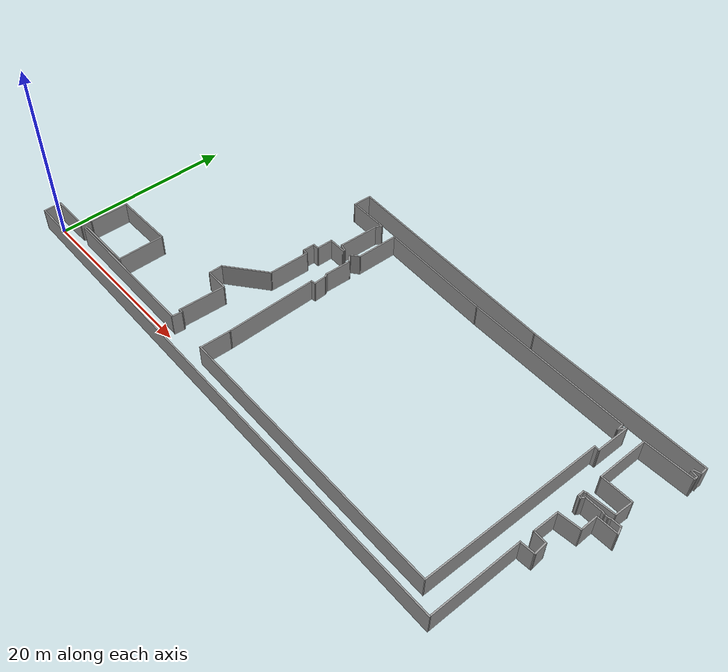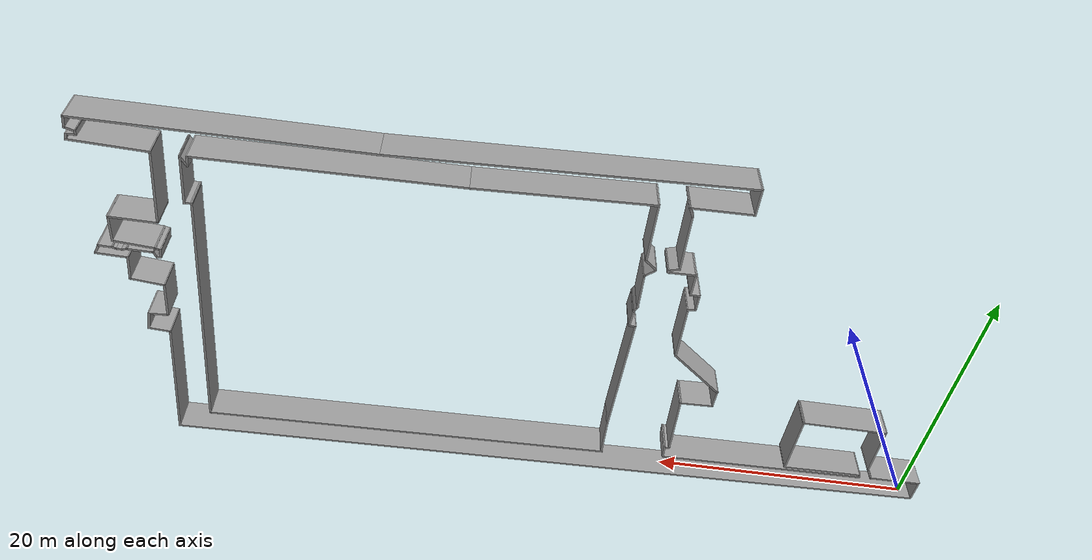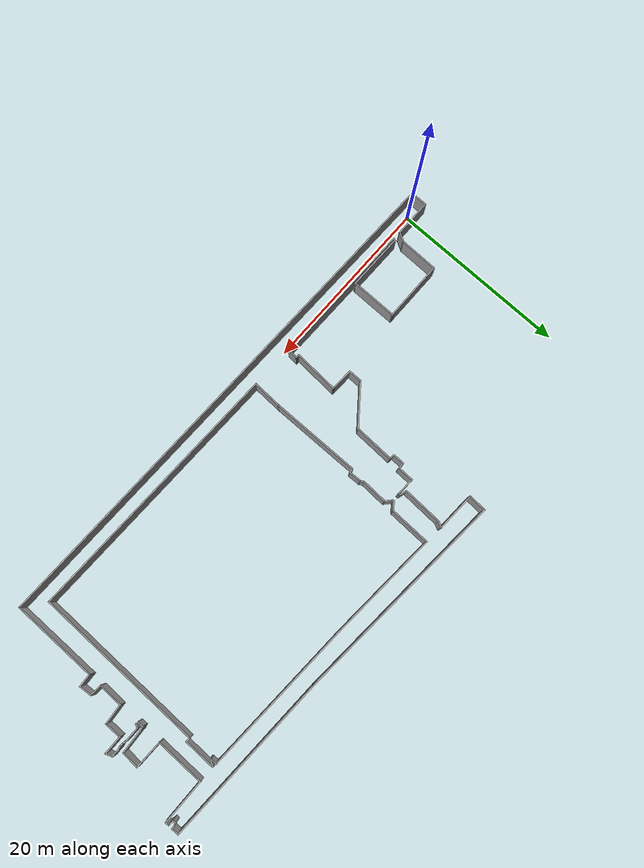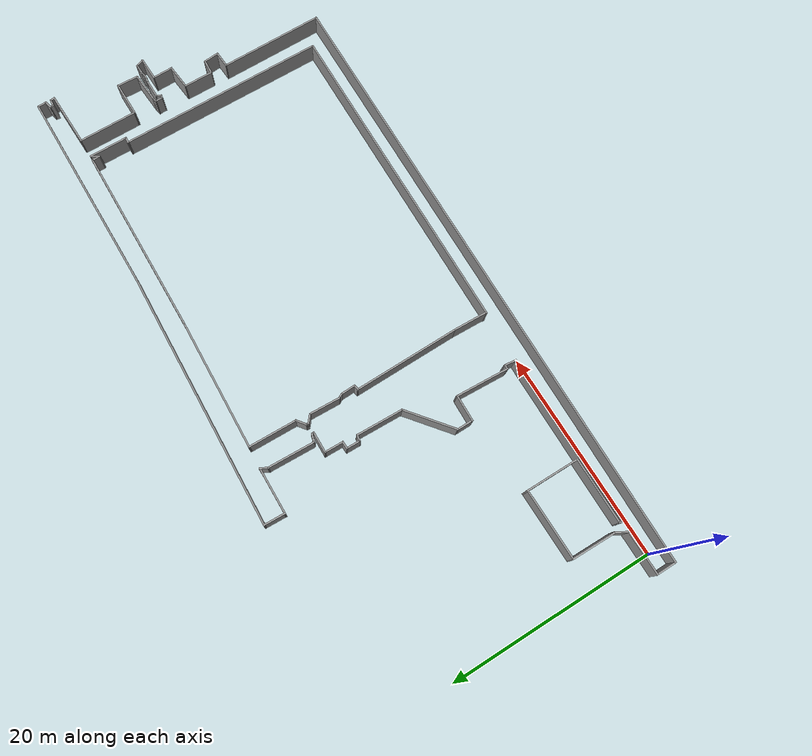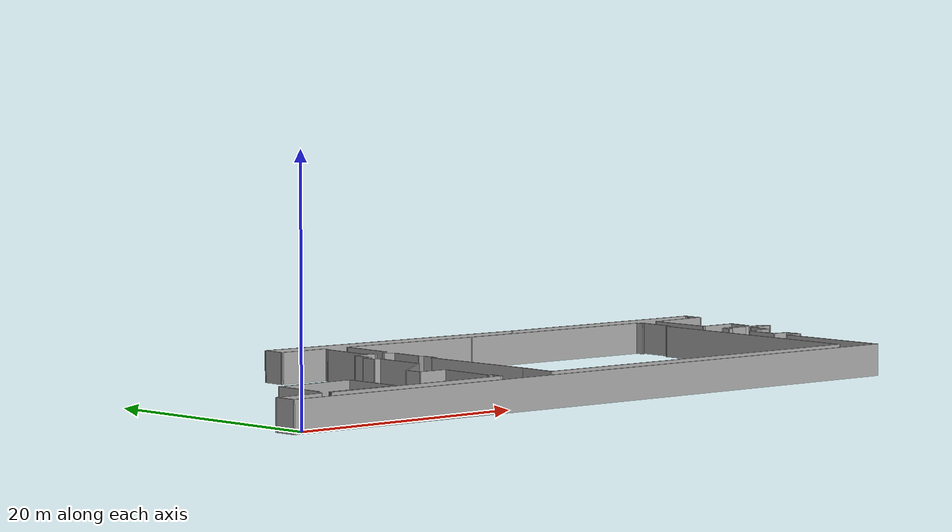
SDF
<?xml version='1.0'?>
<sdf version='1.7'>
  <model name='EnvDC03'>
    <pose>30.9295 12.259 0 0 -0 0</pose>
    <link name='Wall_101'>
      <collision name='Wall_101_Collision'>
        <geometry>
          <box>
            <size>3.03607 0.15 2.5</size>
          </box>
        </geometry>
        <pose>0 0 1.25 0 -0 0</pose>
      </collision>
      <visual name='Wall_101_Visual'>
        <pose>0 0 1.25 0 -0 0</pose>
        <geometry>
          <box>
            <size>3.03607 0.15 2.5</size>
          </box>
        </geometry>
        <material>
          <script>
            <uri>file://media/materials/scripts/gazebo.material</uri>
            <name>Gazebo/Grey</name>
          </script>
          <ambient>1 1 1 1</ambient>
        </material>
        <meta>
          <layer>0</layer>
        </meta>
      </visual>
      <pose>-5.7545 4.67666 0 0 -0 -1.61778</pose>
    </link>
    <link name='Wall_102'>
      <collision name='Wall_102_Collision'>
        <geometry>
          <box>
            <size>0.553985 0.15 2.5</size>
          </box>
        </geometry>
        <pose>0 0 1.25 0 -0 0</pose>
      </collision>
      <visual name='Wall_102_Visual'>
        <pose>0 0 1.25 0 -0 0</pose>
        <geometry>
          <box>
            <size>0.553985 0.15 2.5</size>
          </box>
        </geometry>
        <material>
          <script>
            <uri>file://media/materials/scripts/gazebo.material</uri>
            <name>Gazebo/Grey</name>
          </script>
          <ambient>1 1 1 1</ambient>
        </material>
        <meta>
          <layer>0</layer>
        </meta>
      </visual>
      <pose>-5.72555 3.05789 0 0 -0 -1.07145</pose>
    </link>
    <link name='Wall_103'>
      <collision name='Wall_103_Collision'>
        <geometry>
          <box>
            <size>1.4889 0.15 2.5</size>
          </box>
        </geometry>
        <pose>0 0 1.25 0 -0 0</pose>
      </collision>
      <visual name='Wall_103_Visual'>
        <pose>0 0 1.25 0 -0 0</pose>
        <geometry>
          <box>
            <size>1.4889 0.15 2.5</size>
          </box>
        </geometry>
        <material>
          <script>
            <uri>file://media/materials/scripts/gazebo.material</uri>
            <name>Gazebo/Grey</name>
          </script>
          <ambient>1 1 1 1</ambient>
        </material>
        <meta>
          <layer>0</layer>
        </meta>
      </visual>
      <pose>-5.60464 2.21155 0 0 -0 -1.53467</pose>
    </link>
    <link name='Wall_104'>
      <collision name='Wall_104_Collision'>
        <geometry>
          <box>
            <size>0.608521 0.15 2.5</size>
          </box>
        </geometry>
        <pose>0 0 1.25 0 -0 0</pose>
      </collision>
      <visual name='Wall_104_Visual'>
        <pose>0 0 1.25 0 -0 0</pose>
        <geometry>
          <box>
            <size>0.608521 0.15 2.5</size>
          </box>
        </geometry>
        <material>
          <script>
            <uri>file://media/materials/scripts/gazebo.material</uri>
            <name>Gazebo/Grey</name>
          </script>
          <ambient>1 1 1 1</ambient>
        </material>
        <meta>
          <layer>0</layer>
        </meta>
      </visual>
      <pose>-5.80615 1.50223 0 0 -0 -2.96488</pose>
    </link>
    <link name='Wall_106'>
      <collision name='Wall_106_Collision'>
        <geometry>
          <box>
            <size>10.1892 0.15 2.5</size>
          </box>
        </geometry>
        <pose>0 0 1.25 0 -0 0</pose>
      </collision>
      <visual name='Wall_106_Visual'>
        <pose>0 0 1.25 0 -0 0</pose>
        <geometry>
          <box>
            <size>10.1892 0.15 2.5</size>
          </box>
        </geometry>
        <material>
          <script>
            <uri>file://media/materials/scripts/gazebo.material</uri>
            <name>Gazebo/Grey</name>
          </script>
          <ambient>1 1 1 1</ambient>
        </material>
        <meta>
          <layer>0</layer>
        </meta>
      </visual>
      <pose>-6.00908 -3.5576 0 0 -0 -1.56626</pose>
    </link>
    <link name='Wall_107'>
      <collision name='Wall_107_Collision'>
        <geometry>
          <box>
            <size>3.39689 0.15 2.5</size>
          </box>
        </geometry>
        <pose>0 0 1.25 0 -0 0</pose>
      </collision>
      <visual name='Wall_107_Visual'>
        <pose>0 0 1.25 0 -0 0</pose>
        <geometry>
          <box>
            <size>3.39689 0.15 2.5</size>
          </box>
        </geometry>
        <material>
          <script>
            <uri>file://media/materials/scripts/gazebo.material</uri>
            <name>Gazebo/Grey</name>
          </script>
          <ambient>1 1 1 1</ambient>
        </material>
        <meta>
          <layer>0</layer>
        </meta>
      </visual>
      <pose>-6.0512 -10.1993 0 0 -0 -1.61078</pose>
    </link>
    <link name='Wall_109'>
      <collision name='Wall_109_Collision'>
        <geometry>
          <box>
            <size>6.83694 0.15 2.5</size>
          </box>
        </geometry>
        <pose>0 0 1.25 0 -0 0</pose>
      </collision>
      <visual name='Wall_109_Visual'>
        <pose>0 0 1.25 0 -0 0</pose>
        <geometry>
          <box>
            <size>6.83694 0.15 2.5</size>
          </box>
        </geometry>
        <material>
          <script>
            <uri>file://media/materials/scripts/gazebo.material</uri>
            <name>Gazebo/Grey</name>
          </script>
          <ambient>1 1 1 1</ambient>
        </material>
        <meta>
          <layer>0</layer>
        </meta>
      </visual>
      <pose>-24.3549 -6.10152 0 0 -0 0.003708</pose>
    </link>
    <link name='Wall_110'>
      <collision name='Wall_110_Collision'>
        <geometry>
          <box>
            <size>5.24995 0.15 2.5</size>
          </box>
        </geometry>
        <pose>0 0 1.25 0 -0 0</pose>
      </collision>
      <visual name='Wall_110_Visual'>
        <pose>0 0 1.25 0 -0 0</pose>
        <geometry>
          <box>
            <size>5.24995 0.15 2.5</size>
          </box>
        </geometry>
        <material>
          <script>
            <uri>file://media/materials/scripts/gazebo.material</uri>
            <name>Gazebo/Grey</name>
          </script>
          <ambient>1 1 1 1</ambient>
        </material>
        <meta>
          <layer>0</layer>
        </meta>
      </visual>
      <pose>-21.0239 -8.63907 0 0 -0 -1.57566</pose>
    </link>
    <link name='Wall_111'>
      <collision name='Wall_111_Collision'>
        <geometry>
          <box>
            <size>6.39068 0.15 2.5</size>
          </box>
        </geometry>
        <pose>0 0 1.25 0 -0 0</pose>
      </collision>
      <visual name='Wall_111_Visual'>
        <pose>0 0 1.25 0 -0 0</pose>
        <geometry>
          <box>
            <size>6.39068 0.15 2.5</size>
          </box>
        </geometry>
        <material>
          <script>
            <uri>file://media/materials/scripts/gazebo.material</uri>
            <name>Gazebo/Grey</name>
          </script>
          <ambient>1 1 1 1</ambient>
        </material>
        <meta>
          <layer>0</layer>
        </meta>
      </visual>
      <pose>-24.1566 -11.1683 0 0 -0 3.13497</pose>
    </link>
    <link name='Wall_112'>
      <collision name='Wall_112_Collision'>
        <geometry>
          <box>
            <size>0.348719 0.15 2.5</size>
          </box>
        </geometry>
        <pose>0 0 1.25 0 -0 0</pose>
      </collision>
      <visual name='Wall_112_Visual'>
        <pose>0 0 1.25 0 -0 0</pose>
        <geometry>
          <box>
            <size>0.348719 0.15 2.5</size>
          </box>
        </geometry>
        <material>
          <script>
            <uri>file://media/materials/scripts/gazebo.material</uri>
            <name>Gazebo/Grey</name>
          </script>
          <ambient>1 1 1 1</ambient>
        </material>
        <meta>
          <layer>0</layer>
        </meta>
      </visual>
      <pose>-27.3058 -11.2427 0 0 -0 -1.86624</pose>
    </link>
    <link name='Wall_18'>
      <collision name='Wall_18_Collision'>
        <geometry>
          <box>
            <size>16.3872 0.15 2.5</size>
          </box>
        </geometry>
        <pose>0 0 1.25 0 -0 0</pose>
      </collision>
      <visual name='Wall_18_Visual'>
        <pose>0 0 1.25 0 -0 0</pose>
        <geometry>
          <box>
            <size>16.3872 0.15 2.5</size>
          </box>
        </geometry>
        <material>
          <script>
            <uri>file://media/materials/scripts/gazebo.material</uri>
            <name>Gazebo/Grey</name>
          </script>
          <ambient>1 1 1 1</ambient>
        </material>
        <meta>
          <layer>0</layer>
        </meta>
      </visual>
      <pose>-19.2291 -11.4911 0 0 -0 -0.0127</pose>
    </link>
    <link name='Wall_2'>
      <collision name='Wall_2_Collision'>
        <geometry>
          <box>
            <size>4.25 0.15 2.5</size>
          </box>
        </geometry>
        <pose>0 0 1.25 0 -0 0</pose>
      </collision>
      <visual name='Wall_2_Visual'>
        <pose>0 0 1.25 0 -0 0</pose>
        <geometry>
          <box>
            <size>4.25 0.15 2.5</size>
          </box>
        </geometry>
        <material>
          <script>
            <uri>file://media/materials/scripts/gazebo.material</uri>
            <name>Gazebo/Grey</name>
          </script>
          <ambient>1 1 1 1</ambient>
        </material>
        <meta>
          <layer>0</layer>
        </meta>
      </visual>
      <pose>-30.3631 -11.3322 0 0 -0 3.14159</pose>
    </link>
    <link name='Wall_20'>
      <collision name='Wall_20_Collision'>
        <geometry>
          <box>
            <size>59.2584 0.15 2.5</size>
          </box>
        </geometry>
        <pose>0 0 1.25 0 -0 0</pose>
      </collision>
      <visual name='Wall_20_Visual'>
        <pose>0 0 1.25 0 -0 0</pose>
        <geometry>
          <box>
            <size>59.2584 0.15 2.5</size>
          </box>
        </geometry>
        <material>
          <script>
            <uri>file://media/materials/scripts/gazebo.material</uri>
            <name>Gazebo/Grey</name>
          </script>
          <ambient>1 1 1 1</ambient>
        </material>
        <meta>
          <layer>0</layer>
        </meta>
      </visual>
      <pose>-2.86439 -13.7492 0 0 -0 -0.019188</pose>
    </link>
    <link name='Wall_21'>
      <collision name='Wall_21_Collision'>
        <geometry>
          <box>
            <size>9.95182 0.15 2.5</size>
          </box>
        </geometry>
        <pose>0 0 1.25 0 -0 0</pose>
      </collision>
      <visual name='Wall_21_Visual'>
        <pose>0 0 1.25 0 -0 0</pose>
        <geometry>
          <box>
            <size>9.95182 0.15 2.5</size>
          </box>
        </geometry>
        <material>
          <script>
            <uri>file://media/materials/scripts/gazebo.material</uri>
            <name>Gazebo/Grey</name>
          </script>
          <ambient>1 1 1 1</ambient>
        </material>
        <meta>
          <layer>0</layer>
        </meta>
      </visual>
      <pose>26.7758 -9.41607 0 0 -0 1.55214</pose>
    </link>
    <link name='Wall_22'>
      <collision name='Wall_22_Collision'>
        <geometry>
          <box>
            <size>1.63386 0.15 2.5</size>
          </box>
        </geometry>
        <pose>0 0 1.25 0 -0 0</pose>
      </collision>
      <visual name='Wall_22_Visual'>
        <pose>0 0 1.25 0 -0 0</pose>
        <geometry>
          <box>
            <size>1.63386 0.15 2.5</size>
          </box>
        </geometry>
        <material>
          <script>
            <uri>file://media/materials/scripts/gazebo.material</uri>
            <name>Gazebo/Grey</name>
          </script>
          <ambient>1 1 1 1</ambient>
        </material>
        <meta>
          <layer>0</layer>
        </meta>
      </visual>
      <pose>27.6077 -4.47014 0 0 -0 0.06165</pose>
    </link>
    <link name='Wall_23'>
      <collision name='Wall_23_Collision'>
        <geometry>
          <box>
            <size>1.54262 0.15 2.5</size>
          </box>
        </geometry>
        <pose>0 0 1.25 0 -0 0</pose>
      </collision>
      <visual name='Wall_23_Visual'>
        <pose>0 0 1.25 0 -0 0</pose>
        <geometry>
          <box>
            <size>1.54262 0.15 2.5</size>
          </box>
        </geometry>
        <material>
          <script>
            <uri>file://media/materials/scripts/gazebo.material</uri>
            <name>Gazebo/Grey</name>
          </script>
          <ambient>1 1 1 1</ambient>
        </material>
        <meta>
          <layer>0</layer>
        </meta>
      </visual>
      <pose>28.3025 -3.72963 0 0 -0 1.63649</pose>
    </link>
    <link name='Wall_24'>
      <collision name='Wall_24_Collision'>
        <geometry>
          <box>
            <size>1.46965 0.15 2.5</size>
          </box>
        </geometry>
        <pose>0 0 1.25 0 -0 0</pose>
      </collision>
      <visual name='Wall_24_Visual'>
        <pose>0 0 1.25 0 -0 0</pose>
        <geometry>
          <box>
            <size>1.46965 0.15 2.5</size>
          </box>
        </geometry>
        <material>
          <script>
            <uri>file://media/materials/scripts/gazebo.material</uri>
            <name>Gazebo/Grey</name>
          </script>
          <ambient>1 1 1 1</ambient>
        </material>
        <meta>
          <layer>0</layer>
        </meta>
      </visual>
      <pose>27.5986 -2.98911 0 0 -0 3.07226</pose>
    </link>
    <link name='Wall_25'>
      <collision name='Wall_25_Collision'>
        <geometry>
          <box>
            <size>2.87591 0.15 2.5</size>
          </box>
        </geometry>
        <pose>0 0 1.25 0 -0 0</pose>
      </collision>
      <visual name='Wall_25_Visual'>
        <pose>0 0 1.25 0 -0 0</pose>
        <geometry>
          <box>
            <size>2.87591 0.15 2.5</size>
          </box>
        </geometry>
        <material>
          <script>
            <uri>file://media/materials/scripts/gazebo.material</uri>
            <name>Gazebo/Grey</name>
          </script>
          <ambient>1 1 1 1</ambient>
        </material>
        <meta>
          <layer>0</layer>
        </meta>
      </visual>
      <pose>26.9861 -1.58121 0 0 -0 1.53725</pose>
    </link>
    <link name='Wall_26'>
      <collision name='Wall_26_Collision'>
        <geometry>
          <box>
            <size>2.44606 0.15 2.5</size>
          </box>
        </geometry>
        <pose>0 0 1.25 0 -0 0</pose>
      </collision>
      <visual name='Wall_26_Visual'>
        <pose>0 0 1.25 0 -0 0</pose>
        <geometry>
          <box>
            <size>2.44606 0.15 2.5</size>
          </box>
        </geometry>
        <material>
          <script>
            <uri>file://media/materials/scripts/gazebo.material</uri>
            <name>Gazebo/Grey</name>
          </script>
          <ambient>1 1 1 1</ambient>
        </material>
        <meta>
          <layer>0</layer>
        </meta>
      </visual>
      <pose>28.1746 -0.109317 0 0 -0 0.095707</pose>
    </link>
    <link name='Wall_28'>
      <collision name='Wall_28_Collision'>
        <geometry>
          <box>
            <size>2.0151 0.15 2.5</size>
          </box>
        </geometry>
        <pose>0 0 1.25 0 -0 0</pose>
      </collision>
      <visual name='Wall_28_Visual'>
        <pose>0 0 1.25 0 -0 0</pose>
        <geometry>
          <box>
            <size>2.0151 0.15 2.5</size>
          </box>
        </geometry>
        <material>
          <script>
            <uri>file://media/materials/scripts/gazebo.material</uri>
            <name>Gazebo/Grey</name>
          </script>
          <ambient>1 1 1 1</ambient>
        </material>
        <meta>
          <layer>0</layer>
        </meta>
      </visual>
      <pose>29.3265 0.932894 0 0 -0 1.56099</pose>
    </link>
    <link name='Wall_29'>
      <collision name='Wall_29_Collision'>
        <geometry>
          <box>
            <size>2.2713 0.15 2.5</size>
          </box>
        </geometry>
        <pose>0 0 1.25 0 -0 0</pose>
      </collision>
      <visual name='Wall_29_Visual'>
        <pose>0 0 1.25 0 -0 0</pose>
        <geometry>
          <box>
            <size>2.2713 0.15 2.5</size>
          </box>
        </geometry>
        <material>
          <script>
            <uri>file://media/materials/scripts/gazebo.material</uri>
            <name>Gazebo/Grey</name>
          </script>
          <ambient>1 1 1 1</ambient>
        </material>
        <meta>
          <layer>0</layer>
        </meta>
      </visual>
      <pose>30.3961 1.88368 0 0 -0 0.01724</pose>
    </link>
    <link name='Wall_3'>
      <collision name='Wall_3_Collision'>
        <geometry>
          <box>
            <size>2 0.15 2.5</size>
          </box>
        </geometry>
        <pose>0 0 1.25 0 -0 0</pose>
      </collision>
      <visual name='Wall_3_Visual'>
        <pose>0 0 1.25 0 -0 0</pose>
        <geometry>
          <box>
            <size>2 0.15 2.5</size>
          </box>
        </geometry>
        <material>
          <script>
            <uri>file://media/materials/scripts/gazebo.material</uri>
            <name>Gazebo/Grey</name>
          </script>
          <ambient>1 1 1 1</ambient>
        </material>
        <meta>
          <layer>0</layer>
        </meta>
      </visual>
      <pose>-32.4131 -12.2572 0 0 -0 -1.5708</pose>
    </link>
    <link name='Wall_30'>
      <collision name='Wall_30_Collision'>
        <geometry>
          <box>
            <size>0.890462 0.15 2.5</size>
          </box>
        </geometry>
        <pose>0 0 1.25 0 -0 0</pose>
      </collision>
      <visual name='Wall_30_Visual'>
        <pose>0 0 1.25 0 -0 0</pose>
        <geometry>
          <box>
            <size>0.890462 0.15 2.5</size>
          </box>
        </geometry>
        <material>
          <script>
            <uri>file://media/materials/scripts/gazebo.material</uri>
            <name>Gazebo/Grey</name>
          </script>
          <ambient>1 1 1 1</ambient>
        </material>
        <meta>
          <layer>0</layer>
        </meta>
      </visual>
      <pose>31.3286 2.24937 0 0 -0 1.92379</pose>
    </link>
    <link name='Wall_32'>
      <collision name='Wall_32_Collision'>
        <geometry>
          <box>
            <size>1.0622 0.15 2.5</size>
          </box>
        </geometry>
        <pose>0 0 1.25 0 -0 0</pose>
      </collision>
      <visual name='Wall_32_Visual'>
        <pose>0 0 1.25 0 -0 0</pose>
        <geometry>
          <box>
            <size>1.0622 0.15 2.5</size>
          </box>
        </geometry>
        <material>
          <script>
            <uri>file://media/materials/scripts/gazebo.material</uri>
            <name>Gazebo/Grey</name>
          </script>
          <ambient>1 1 1 1</ambient>
        </material>
        <meta>
          <layer>0</layer>
        </meta>
      </visual>
      <pose>30.7445 2.59295 0 0 -0 -3.13321</pose>
    </link>
    <link name='Wall_33'>
      <collision name='Wall_33_Collision'>
        <geometry>
          <box>
            <size>0.434047 0.15 2.5</size>
          </box>
        </geometry>
        <pose>0 0 1.25 0 -0 0</pose>
      </collision>
      <visual name='Wall_33_Visual'>
        <pose>0 0 1.25 0 -0 0</pose>
        <geometry>
          <box>
            <size>0.434047 0.15 2.5</size>
          </box>
        </geometry>
        <material>
          <script>
            <uri>file://media/materials/scripts/gazebo.material</uri>
            <name>Gazebo/Grey</name>
          </script>
          <ambient>1 1 1 1</ambient>
        </material>
        <meta>
          <layer>0</layer>
        </meta>
      </visual>
      <pose>30.1522 2.54906 0 0 -0 -2.85554</pose>
    </link>
    <link name='Wall_34'>
      <collision name='Wall_34_Collision'>
        <geometry>
          <box>
            <size>0.498738 0.15 2.5</size>
          </box>
        </geometry>
        <pose>0 0 1.25 0 -0 0</pose>
      </collision>
      <visual name='Wall_34_Visual'>
        <pose>0 0 1.25 0 -0 0</pose>
        <geometry>
          <box>
            <size>0.498738 0.15 2.5</size>
          </box>
        </geometry>
        <material>
          <script>
            <uri>file://media/materials/scripts/gazebo.material</uri>
            <name>Gazebo/Grey</name>
          </script>
          <ambient>1 1 1 1</ambient>
        </material>
        <meta>
          <layer>0</layer>
        </meta>
      </visual>
      <pose>29.8416 2.50497 0 0 -0 -3.11861</pose>
    </link>
    <link name='Wall_35'>
      <collision name='Wall_35_Collision'>
        <geometry>
          <box>
            <size>0.508659 0.15 2.5</size>
          </box>
        </geometry>
        <pose>0 0 1.25 0 -0 0</pose>
      </collision>
      <visual name='Wall_35_Visual'>
        <pose>0 0 1.25 0 -0 0</pose>
        <geometry>
          <box>
            <size>0.508659 0.15 2.5</size>
          </box>
        </geometry>
        <material>
          <script>
            <uri>file://media/materials/scripts/gazebo.material</uri>
            <name>Gazebo/Grey</name>
          </script>
          <ambient>1 1 1 1</ambient>
        </material>
        <meta>
          <layer>0</layer>
        </meta>
      </visual>
      <pose>29.493 2.54505 0 0 -0 2.89391</pose>
    </link>
    <link name='Wall_36'>
      <collision name='Wall_36_Collision'>
        <geometry>
          <box>
            <size>1.88526 0.15 2.5</size>
          </box>
        </geometry>
        <pose>0 0 1.25 0 -0 0</pose>
      </collision>
      <visual name='Wall_36_Visual'>
        <pose>0 0 1.25 0 -0 0</pose>
        <geometry>
          <box>
            <size>1.88526 0.15 2.5</size>
          </box>
        </geometry>
        <material>
          <script>
            <uri>file://media/materials/scripts/gazebo.material</uri>
            <name>Gazebo/Grey</name>
          </script>
          <ambient>1 1 1 1</ambient>
        </material>
        <meta>
          <layer>0</layer>
        </meta>
      </visual>
      <pose>28.451 2.59314 0 0 -0 3.13697</pose>
    </link>
    <link name='Wall_37'>
      <collision name='Wall_37_Collision'>
        <geometry>
          <box>
            <size>0.586442 0.15 2.5</size>
          </box>
        </geometry>
        <pose>0 0 1.25 0 -0 0</pose>
      </collision>
      <visual name='Wall_37_Visual'>
        <pose>0 0 1.25 0 -0 0</pose>
        <geometry>
          <box>
            <size>0.586442 0.15 2.5</size>
          </box>
        </geometry>
        <material>
          <script>
            <uri>file://media/materials/scripts/gazebo.material</uri>
            <name>Gazebo/Grey</name>
          </script>
          <ambient>1 1 1 1</ambient>
        </material>
        <meta>
          <layer>0</layer>
        </meta>
      </visual>
      <pose>27.4732 2.4088 0 0 -0 -2.10019</pose>
    </link>
    <link name='Wall_38'>
      <collision name='Wall_38_Collision'>
        <geometry>
          <box>
            <size>0.401672 0.15 2.5</size>
          </box>
        </geometry>
        <pose>0 0 1.25 0 -0 0</pose>
      </collision>
      <visual name='Wall_38_Visual'>
        <pose>0 0 1.25 0 -0 0</pose>
        <geometry>
          <box>
            <size>0.401672 0.15 2.5</size>
          </box>
        </geometry>
        <material>
          <script>
            <uri>file://media/materials/scripts/gazebo.material</uri>
            <name>Gazebo/Grey</name>
          </script>
          <ambient>1 1 1 1</ambient>
        </material>
        <meta>
          <layer>0</layer>
        </meta>
      </visual>
      <pose>27.2388 2.24048 0 0 -0 2.98168</pose>
    </link>
    <link name='Wall_39'>
      <collision name='Wall_39_Collision'>
        <geometry>
          <box>
            <size>0.77521 0.15 2.5</size>
          </box>
        </geometry>
        <pose>0 0 1.25 0 -0 0</pose>
      </collision>
      <visual name='Wall_39_Visual'>
        <pose>0 0 1.25 0 -0 0</pose>
        <geometry>
          <box>
            <size>0.77521 0.15 2.5</size>
          </box>
        </geometry>
        <material>
          <script>
            <uri>file://media/materials/scripts/gazebo.material</uri>
            <name>Gazebo/Grey</name>
          </script>
          <ambient>1 1 1 1</ambient>
        </material>
        <meta>
          <layer>0</layer>
        </meta>
      </visual>
      <pose>27.1106 2.5731 0 0 -0 1.58362</pose>
    </link>
    <link name='Wall_40'>
      <collision name='Wall_40_Collision'>
        <geometry>
          <box>
            <size>0.482496 0.15 2.5</size>
          </box>
        </geometry>
        <pose>0 0 1.25 0 -0 0</pose>
      </collision>
      <visual name='Wall_40_Visual'>
        <pose>0 0 1.25 0 -0 0</pose>
        <geometry>
          <box>
            <size>0.482496 0.15 2.5</size>
          </box>
        </geometry>
        <material>
          <script>
            <uri>file://media/materials/scripts/gazebo.material</uri>
            <name>Gazebo/Grey</name>
          </script>
          <ambient>1 1 1 1</ambient>
        </material>
        <meta>
          <layer>0</layer>
        </meta>
      </visual>
      <pose>27.2668 2.92976 0 0 -0 0.268366</pose>
    </link>
    <link name='Wall_41'>
      <collision name='Wall_41_Collision'>
        <geometry>
          <box>
            <size>2.96099 0.15 2.5</size>
          </box>
        </geometry>
        <pose>0 0 1.25 0 -0 0</pose>
      </collision>
      <visual name='Wall_41_Visual'>
        <pose>0 0 1.25 0 -0 0</pose>
        <geometry>
          <box>
            <size>2.96099 0.15 2.5</size>
          </box>
        </geometry>
        <material>
          <script>
            <uri>file://media/materials/scripts/gazebo.material</uri>
            <name>Gazebo/Grey</name>
          </script>
          <ambient>1 1 1 1</ambient>
        </material>
        <meta>
          <layer>0</layer>
        </meta>
      </visual>
      <pose>28.8297 3.06401 0 0 -0 0.064197</pose>
    </link>
    <link name='Wall_43'>
      <collision name='Wall_43_Collision'>
        <geometry>
          <box>
            <size>2.12927 0.15 2.5</size>
          </box>
        </geometry>
        <pose>0 0 1.25 0 -0 0</pose>
      </collision>
      <visual name='Wall_43_Visual'>
        <pose>0 0 1.25 0 -0 0</pose>
        <geometry>
          <box>
            <size>2.12927 0.15 2.5</size>
          </box>
        </geometry>
        <material>
          <script>
            <uri>file://media/materials/scripts/gazebo.material</uri>
            <name>Gazebo/Grey</name>
          </script>
          <ambient>1 1 1 1</ambient>
        </material>
        <meta>
          <layer>0</layer>
        </meta>
      </visual>
      <pose>30.2975 4.14166 0 0 -0 1.50488</pose>
    </link>
    <link name='Wall_44'>
      <collision name='Wall_44_Collision'>
        <geometry>
          <box>
            <size>3.36815 0.15 2.5</size>
          </box>
        </geometry>
        <pose>0 0 1.25 0 -0 0</pose>
      </collision>
      <visual name='Wall_44_Visual'>
        <pose>0 0 1.25 0 -0 0</pose>
        <geometry>
          <box>
            <size>3.36815 0.15 2.5</size>
          </box>
        </geometry>
        <material>
          <script>
            <uri>file://media/materials/scripts/gazebo.material</uri>
            <name>Gazebo/Grey</name>
          </script>
          <ambient>1 1 1 1</ambient>
        </material>
        <meta>
          <layer>0</layer>
        </meta>
      </visual>
      <pose>28.7537 5.14133 0 0 -0 3.13402</pose>
    </link>
    <link name='Wall_45'>
      <collision name='Wall_45_Collision'>
        <geometry>
          <box>
            <size>5.70979 0.15 2.5</size>
          </box>
        </geometry>
        <pose>0 0 1.25 0 -0 0</pose>
      </collision>
      <visual name='Wall_45_Visual'>
        <pose>0 0 1.25 0 -0 0</pose>
        <geometry>
          <box>
            <size>5.70979 0.15 2.5</size>
          </box>
        </geometry>
        <material>
          <script>
            <uri>file://media/materials/scripts/gazebo.material</uri>
            <name>Gazebo/Grey</name>
          </script>
          <ambient>1 1 1 1</ambient>
        </material>
        <meta>
          <layer>0</layer>
        </meta>
      </visual>
      <pose>27.2056 7.93275 0 0 -0 1.54887</pose>
    </link>
    <link name='Wall_46'>
      <collision name='Wall_46_Collision'>
        <geometry>
          <box>
            <size>5.27034 0.15 2.5</size>
          </box>
        </geometry>
        <pose>0 0 1.25 0 -0 0</pose>
      </collision>
      <visual name='Wall_46_Visual'>
        <pose>0 0 1.25 0 -0 0</pose>
        <geometry>
          <box>
            <size>5.27034 0.15 2.5</size>
          </box>
        </geometry>
        <material>
          <script>
            <uri>file://media/materials/scripts/gazebo.material</uri>
            <name>Gazebo/Grey</name>
          </script>
          <ambient>1 1 1 1</ambient>
        </material>
        <meta>
          <layer>0</layer>
        </meta>
      </visual>
      <pose>29.8264 10.7546 0 0 -0 0.016665</pose>
    </link>
    <link name='Wall_47'>
      <collision name='Wall_47_Collision'>
        <geometry>
          <box>
            <size>0.53101 0.15 2.5</size>
          </box>
        </geometry>
        <pose>0 0 1.25 0 -0 0</pose>
      </collision>
      <visual name='Wall_47_Visual'>
        <pose>0 0 1.25 0 -0 0</pose>
        <geometry>
          <box>
            <size>0.53101 0.15 2.5</size>
          </box>
        </geometry>
        <material>
          <script>
            <uri>file://media/materials/scripts/gazebo.material</uri>
            <name>Gazebo/Grey</name>
          </script>
          <ambient>1 1 1 1</ambient>
        </material>
        <meta>
          <layer>0</layer>
        </meta>
      </visual>
      <pose>32.3618 10.9862 0 0 -0 1.69912</pose>
    </link>
    <link name='Wall_48'>
      <collision name='Wall_48_Collision'>
        <geometry>
          <box>
            <size>0.753354 0.15 2.5</size>
          </box>
        </geometry>
        <pose>0 0 1.25 0 -0 0</pose>
      </collision>
      <visual name='Wall_48_Visual'>
        <pose>0 0 1.25 0 -0 0</pose>
        <geometry>
          <box>
            <size>0.753354 0.15 2.5</size>
          </box>
        </geometry>
        <material>
          <script>
            <uri>file://media/materials/scripts/gazebo.material</uri>
            <name>Gazebo/Grey</name>
          </script>
          <ambient>1 1 1 1</ambient>
        </material>
        <meta>
          <layer>0</layer>
        </meta>
      </visual>
      <pose>32.0388 11.2178 0 0 -0 2.9997</pose>
    </link>
    <link name='Wall_49'>
      <collision name='Wall_49_Collision'>
        <geometry>
          <box>
            <size>0.40858 0.15 2.5</size>
          </box>
        </geometry>
        <pose>0 0 1.25 0 -0 0</pose>
      </collision>
      <visual name='Wall_49_Visual'>
        <pose>0 0 1.25 0 -0 0</pose>
        <geometry>
          <box>
            <size>0.40858 0.15 2.5</size>
          </box>
        </geometry>
        <material>
          <script>
            <uri>file://media/materials/scripts/gazebo.material</uri>
            <name>Gazebo/Grey</name>
          </script>
          <ambient>1 1 1 1</ambient>
        </material>
        <meta>
          <layer>0</layer>
        </meta>
      </visual>
      <pose>31.7584 11.3885 0 0 -0 1.4289</pose>
    </link>
    <link name='Wall_5'>
      <collision name='Wall_5_Collision'>
        <geometry>
          <box>
            <size>1.25 0.15 2.5</size>
          </box>
        </geometry>
        <pose>0 0 1.25 0 -0 0</pose>
      </collision>
      <visual name='Wall_5_Visual'>
        <pose>0 0 1.25 0 -0 0</pose>
        <geometry>
          <box>
            <size>1.25 0.15 2.5</size>
          </box>
        </geometry>
        <material>
          <script>
            <uri>file://media/materials/scripts/gazebo.material</uri>
            <name>Gazebo/Grey</name>
          </script>
          <ambient>1 1 1 1</ambient>
        </material>
        <meta>
          <layer>0</layer>
        </meta>
      </visual>
      <pose>-28.0381 -10.8559 0 0 -0 1.0472</pose>
    </link>
    <link name='Wall_50'>
      <collision name='Wall_50_Collision'>
        <geometry>
          <box>
            <size>0.791548 0.15 2.5</size>
          </box>
        </geometry>
        <pose>0 0 1.25 0 -0 0</pose>
      </collision>
      <visual name='Wall_50_Visual'>
        <pose>0 0 1.25 0 -0 0</pose>
        <geometry>
          <box>
            <size>0.791548 0.15 2.5</size>
          </box>
        </geometry>
        <material>
          <script>
            <uri>file://media/materials/scripts/gazebo.material</uri>
            <name>Gazebo/Grey</name>
          </script>
          <ambient>1 1 1 1</ambient>
        </material>
        <meta>
          <layer>0</layer>
        </meta>
      </visual>
      <pose>32.0875 11.5957 0 0 -0 0.249587</pose>
    </link>
    <link name='Wall_51'>
      <collision name='Wall_51_Collision'>
        <geometry>
          <box>
            <size>0.942418 0.15 2.5</size>
          </box>
        </geometry>
        <pose>0 0 1.25 0 -0 0</pose>
      </collision>
      <visual name='Wall_51_Visual'>
        <pose>0 0 1.25 0 -0 0</pose>
        <geometry>
          <box>
            <size>0.942418 0.15 2.5</size>
          </box>
        </geometry>
        <material>
          <script>
            <uri>file://media/materials/scripts/gazebo.material</uri>
            <name>Gazebo/Grey</name>
          </script>
          <ambient>1 1 1 1</ambient>
        </material>
        <meta>
          <layer>0</layer>
        </meta>
      </visual>
      <pose>32.3923 12.0711 0 0 -0 1.58618</pose>
    </link>
    <link name='Wall_53'>
      <collision name='Wall_53_Collision'>
        <geometry>
          <box>
            <size>19.605 0.15 2.5</size>
          </box>
        </geometry>
        <pose>0 0 1.25 0 -0 0</pose>
      </collision>
      <visual name='Wall_53_Visual'>
        <pose>0 0 1.25 0 -0 0</pose>
        <geometry>
          <box>
            <size>19.605 0.15 2.5</size>
          </box>
        </geometry>
        <material>
          <script>
            <uri>file://media/materials/scripts/gazebo.material</uri>
            <name>Gazebo/Grey</name>
          </script>
          <ambient>1 1 1 1</ambient>
        </material>
        <meta>
          <layer>0</layer>
        </meta>
      </visual>
      <pose>22.6612 12.6869 0 0 -0 3.11902</pose>
    </link>
    <link name='Wall_54'>
      <collision name='Wall_54_Collision'>
        <geometry>
          <box>
            <size>24.857 0.15 2.5</size>
          </box>
        </geometry>
        <pose>0 0 1.25 0 -0 0</pose>
      </collision>
      <visual name='Wall_54_Visual'>
        <pose>0 0 1.25 0 -0 0</pose>
        <geometry>
          <box>
            <size>24.857 0.15 2.5</size>
          </box>
        </geometry>
        <material>
          <script>
            <uri>file://media/materials/scripts/gazebo.material</uri>
            <name>Gazebo/Grey</name>
          </script>
          <ambient>1 1 1 1</ambient>
        </material>
        <meta>
          <layer>0</layer>
        </meta>
      </visual>
      <pose>0.602754 13.61 0 0 -0 3.08461</pose>
    </link>
    <link name='Wall_55'>
      <collision name='Wall_55_Collision'>
        <geometry>
          <box>
            <size>2.13456 0.15 2.5</size>
          </box>
        </geometry>
        <pose>0 0 1.25 0 -0 0</pose>
      </collision>
      <visual name='Wall_55_Visual'>
        <pose>0 0 1.25 0 -0 0</pose>
        <geometry>
          <box>
            <size>2.13456 0.15 2.5</size>
          </box>
        </geometry>
        <material>
          <script>
            <uri>file://media/materials/scripts/gazebo.material</uri>
            <name>Gazebo/Grey</name>
          </script>
          <ambient>1 1 1 1</ambient>
        </material>
        <meta>
          <layer>0</layer>
        </meta>
      </visual>
      <pose>-11.7733 13.3222 0 0 -0 -1.61378</pose>
    </link>
    <link name='Wall_56'>
      <collision name='Wall_56_Collision'>
        <geometry>
          <box>
            <size>4.52308 0.15 2.5</size>
          </box>
        </geometry>
        <pose>0 0 1.25 0 -0 0</pose>
      </collision>
      <visual name='Wall_56_Visual'>
        <pose>0 0 1.25 0 -0 0</pose>
        <geometry>
          <box>
            <size>4.52308 0.15 2.5</size>
          </box>
        </geometry>
        <material>
          <script>
            <uri>file://media/materials/scripts/gazebo.material</uri>
            <name>Gazebo/Grey</name>
          </script>
          <ambient>1 1 1 1</ambient>
        </material>
        <meta>
          <layer>0</layer>
        </meta>
      </visual>
      <pose>-9.63069 12.2562 0 0 -0 -0.034133</pose>
    </link>
    <link name='Wall_57'>
      <collision name='Wall_57_Collision'>
        <geometry>
          <box>
            <size>0.865084 0.15 2.5</size>
          </box>
        </geometry>
        <pose>0 0 1.25 0 -0 0</pose>
      </collision>
      <visual name='Wall_57_Visual'>
        <pose>0 0 1.25 0 -0 0</pose>
        <geometry>
          <box>
            <size>0.865084 0.15 2.5</size>
          </box>
        </geometry>
        <material>
          <script>
            <uri>file://media/materials/scripts/gazebo.material</uri>
            <name>Gazebo/Grey</name>
          </script>
          <ambient>1 1 1 1</ambient>
        </material>
        <meta>
          <layer>0</layer>
        </meta>
      </visual>
      <pose>-7.60532 11.8618 0 0 -0 -2.03444</pose>
    </link>
    <link name='Wall_6'>
      <collision name='Wall_6_Collision'>
        <geometry>
          <box>
            <size>4.41613 0.15 2.5</size>
          </box>
        </geometry>
        <pose>0 0 1.25 0 -0 0</pose>
      </collision>
      <visual name='Wall_6_Visual'>
        <pose>0 0 1.25 0 -0 0</pose>
        <geometry>
          <box>
            <size>4.41613 0.15 2.5</size>
          </box>
        </geometry>
        <material>
          <script>
            <uri>file://media/materials/scripts/gazebo.material</uri>
            <name>Gazebo/Grey</name>
          </script>
          <ambient>1 1 1 1</ambient>
        </material>
        <meta>
          <layer>0</layer>
        </meta>
      </visual>
      <pose>-27.7308 -8.24674 0 0 -0 1.55561</pose>
    </link>
    <link name='Wall_60'>
      <collision name='Wall_60_Collision'>
        <geometry>
          <box>
            <size>4.60994 0.15 2.5</size>
          </box>
        </geometry>
        <pose>0 0 1.25 0 -0 0</pose>
      </collision>
      <visual name='Wall_60_Visual'>
        <pose>0 0 1.25 0 -0 0</pose>
        <geometry>
          <box>
            <size>4.60994 0.15 2.5</size>
          </box>
        </geometry>
        <material>
          <script>
            <uri>file://media/materials/scripts/gazebo.material</uri>
            <name>Gazebo/Grey</name>
          </script>
          <ambient>1 1 1 1</ambient>
        </material>
        <meta>
          <layer>0</layer>
        </meta>
      </visual>
      <pose>-7.86116 9.3141 0 0 -0 -1.61383</pose>
    </link>
    <link name='Wall_63'>
      <collision name='Wall_63_Collision'>
        <geometry>
          <box>
            <size>0.895895 0.15 2.5</size>
          </box>
        </geometry>
        <pose>0 0 1.25 0 -0 0</pose>
      </collision>
      <visual name='Wall_63_Visual'>
        <pose>0 0 1.25 0 -0 0</pose>
        <geometry>
          <box>
            <size>0.895895 0.15 2.5</size>
          </box>
        </geometry>
        <material>
          <script>
            <uri>file://media/materials/scripts/gazebo.material</uri>
            <name>Gazebo/Grey</name>
          </script>
          <ambient>1 1 1 1</ambient>
        </material>
        <meta>
          <layer>0</layer>
        </meta>
      </visual>
      <pose>-7.60079 6.97604 0 0 -0 -0.299836</pose>
    </link>
    <link name='Wall_64'>
      <collision name='Wall_64_Collision'>
        <geometry>
          <box>
            <size>0.330434 0.15 2.5</size>
          </box>
        </geometry>
        <pose>0 0 1.25 0 -0 0</pose>
      </collision>
      <visual name='Wall_64_Visual'>
        <pose>0 0 1.25 0 -0 0</pose>
        <geometry>
          <box>
            <size>0.330434 0.15 2.5</size>
          </box>
        </geometry>
        <material>
          <script>
            <uri>file://media/materials/scripts/gazebo.material</uri>
            <name>Gazebo/Grey</name>
          </script>
          <ambient>1 1 1 1</ambient>
        </material>
        <meta>
          <layer>0</layer>
        </meta>
      </visual>
      <pose>-7.24148 6.77572 0 0 -0 -1.53747</pose>
    </link>
    <link name='Wall_65'>
      <collision name='Wall_65_Collision'>
        <geometry>
          <box>
            <size>2.10488 0.15 2.5</size>
          </box>
        </geometry>
        <pose>0 0 1.25 0 -0 0</pose>
      </collision>
      <visual name='Wall_65_Visual'>
        <pose>0 0 1.25 0 -0 0</pose>
        <geometry>
          <box>
            <size>2.10488 0.15 2.5</size>
          </box>
        </geometry>
        <material>
          <script>
            <uri>file://media/materials/scripts/gazebo.material</uri>
            <name>Gazebo/Grey</name>
          </script>
          <ambient>1 1 1 1</ambient>
        </material>
        <meta>
          <layer>0</layer>
        </meta>
      </visual>
      <pose>-8.21528 6.72061 0 0 -0 3.10571</pose>
    </link>
    <link name='Wall_67'>
      <collision name='Wall_67_Collision'>
        <geometry>
          <box>
            <size>1.90639 0.15 2.5</size>
          </box>
        </geometry>
        <pose>0 0 1.25 0 -0 0</pose>
      </collision>
      <visual name='Wall_67_Visual'>
        <pose>0 0 1.25 0 -0 0</pose>
        <geometry>
          <box>
            <size>1.90639 0.15 2.5</size>
          </box>
        </geometry>
        <material>
          <script>
            <uri>file://media/materials/scripts/gazebo.material</uri>
            <name>Gazebo/Grey</name>
          </script>
          <ambient>1 1 1 1</ambient>
        </material>
        <meta>
          <layer>0</layer>
        </meta>
      </visual>
      <pose>-9.21528 5.87779 0 0 -0 -1.59721</pose>
    </link>
    <link name='Wall_68'>
      <collision name='Wall_68_Collision'>
        <geometry>
          <box>
            <size>0.799125 0.15 2.5</size>
          </box>
        </geometry>
        <pose>0 0 1.25 0 -0 0</pose>
      </collision>
      <visual name='Wall_68_Visual'>
        <pose>0 0 1.25 0 -0 0</pose>
        <geometry>
          <box>
            <size>0.799125 0.15 2.5</size>
          </box>
        </geometry>
        <material>
          <script>
            <uri>file://media/materials/scripts/gazebo.material</uri>
            <name>Gazebo/Grey</name>
          </script>
          <ambient>1 1 1 1</ambient>
        </material>
        <meta>
          <layer>0</layer>
        </meta>
      </visual>
      <pose>-9.56291 4.99063 0 0 -0 -3.11303</pose>
    </link>
    <link name='Wall_69'>
      <collision name='Wall_69_Collision'>
        <geometry>
          <box>
            <size>1.41119 0.15 2.5</size>
          </box>
        </geometry>
        <pose>0 0 1.25 0 -0 0</pose>
      </collision>
      <visual name='Wall_69_Visual'>
        <pose>0 0 1.25 0 -0 0</pose>
        <geometry>
          <box>
            <size>1.41119 0.15 2.5</size>
          </box>
        </geometry>
        <material>
          <script>
            <uri>file://media/materials/scripts/gazebo.material</uri>
            <name>Gazebo/Grey</name>
          </script>
          <ambient>1 1 1 1</ambient>
        </material>
        <meta>
          <layer>0</layer>
        </meta>
      </visual>
      <pose>-9.90587 4.35104 0 0 -0 -1.6002</pose>
    </link>
    <link name='Wall_70'>
      <collision name='Wall_70_Collision'>
        <geometry>
          <box>
            <size>0.695559 0.15 2.5</size>
          </box>
        </geometry>
        <pose>0 0 1.25 0 -0 0</pose>
      </collision>
      <visual name='Wall_70_Visual'>
        <pose>0 0 1.25 0 -0 0</pose>
        <geometry>
          <box>
            <size>0.695559 0.15 2.5</size>
          </box>
        </geometry>
        <material>
          <script>
            <uri>file://media/materials/scripts/gazebo.material</uri>
            <name>Gazebo/Grey</name>
          </script>
          <ambient>1 1 1 1</ambient>
        </material>
        <meta>
          <layer>0</layer>
        </meta>
      </visual>
      <pose>-9.6556 3.67437 0 0 -0 -0.170735</pose>
    </link>
    <link name='Wall_71'>
      <collision name='Wall_71_Collision'>
        <geometry>
          <box>
            <size>4.6018 0.15 2.5</size>
          </box>
        </geometry>
        <pose>0 0 1.25 0 -0 0</pose>
      </collision>
      <visual name='Wall_71_Visual'>
        <pose>0 0 1.25 0 -0 0</pose>
        <geometry>
          <box>
            <size>4.6018 0.15 2.5</size>
          </box>
        </geometry>
        <material>
          <script>
            <uri>file://media/materials/scripts/gazebo.material</uri>
            <name>Gazebo/Grey</name>
          </script>
          <ambient>1 1 1 1</ambient>
        </material>
        <meta>
          <layer>0</layer>
        </meta>
      </visual>
      <pose>-9.47021 1.40336 0 0 -0 -1.60828</pose>
    </link>
    <link name='Wall_72'>
      <collision name='Wall_72_Collision'>
        <geometry>
          <box>
            <size>5.21677 0.15 2.5</size>
          </box>
        </geometry>
        <pose>0 0 1.25 0 -0 0</pose>
      </collision>
      <visual name='Wall_72_Visual'>
        <pose>0 0 1.25 0 -0 0</pose>
        <geometry>
          <box>
            <size>5.21677 0.15 2.5</size>
          </box>
        </geometry>
        <material>
          <script>
            <uri>file://media/materials/scripts/gazebo.material</uri>
            <name>Gazebo/Grey</name>
          </script>
          <ambient>1 1 1 1</ambient>
        </material>
        <meta>
          <layer>0</layer>
        </meta>
      </visual>
      <pose>-11.5373 -2.3971 0 0 -0 -2.47028</pose>
    </link>
    <link name='Wall_73'>
      <collision name='Wall_73_Collision'>
        <geometry>
          <box>
            <size>1.61457 0.15 2.5</size>
          </box>
        </geometry>
        <pose>0 0 1.25 0 -0 0</pose>
      </collision>
      <visual name='Wall_73_Visual'>
        <pose>0 0 1.25 0 -0 0</pose>
        <geometry>
          <box>
            <size>1.61457 0.15 2.5</size>
          </box>
        </geometry>
        <material>
          <script>
            <uri>file://media/materials/scripts/gazebo.material</uri>
            <name>Gazebo/Grey</name>
          </script>
          <ambient>1 1 1 1</ambient>
        </material>
        <meta>
          <layer>0</layer>
        </meta>
      </visual>
      <pose>-13.521 -4.70519 0 0 -0 -1.5708</pose>
    </link>
    <link name='Wall_74'>
      <collision name='Wall_74_Collision'>
        <geometry>
          <box>
            <size>2.61741 0.15 2.5</size>
          </box>
        </geometry>
        <pose>0 0 1.25 0 -0 0</pose>
      </collision>
      <visual name='Wall_74_Visual'>
        <pose>0 0 1.25 0 -0 0</pose>
        <geometry>
          <box>
            <size>2.61741 0.15 2.5</size>
          </box>
        </geometry>
        <material>
          <script>
            <uri>file://media/materials/scripts/gazebo.material</uri>
            <name>Gazebo/Grey</name>
          </script>
          <ambient>1 1 1 1</ambient>
        </material>
        <meta>
          <layer>0</layer>
        </meta>
      </visual>
      <pose>-12.2881 -5.48382 0 0 -0 -0.037576</pose>
    </link>
    <link name='Wall_76'>
      <collision name='Wall_76_Collision'>
        <geometry>
          <box>
            <size>5.18172 0.15 2.5</size>
          </box>
        </geometry>
        <pose>0 0 1.25 0 -0 0</pose>
      </collision>
      <visual name='Wall_76_Visual'>
        <pose>0 0 1.25 0 -0 0</pose>
        <geometry>
          <box>
            <size>5.18172 0.15 2.5</size>
          </box>
        </geometry>
        <material>
          <script>
            <uri>file://media/materials/scripts/gazebo.material</uri>
            <name>Gazebo/Grey</name>
          </script>
          <ambient>1 1 1 1</ambient>
        </material>
        <meta>
          <layer>0</layer>
        </meta>
      </visual>
      <pose>-11.1943 -8.04218 0 0 -0 -1.62609</pose>
    </link>
    <link name='Wall_79'>
      <collision name='Wall_79_Collision'>
        <geometry>
          <box>
            <size>0.514477 0.15 2.5</size>
          </box>
        </geometry>
        <pose>0 0 1.25 0 -0 0</pose>
      </collision>
      <visual name='Wall_79_Visual'>
        <pose>0 0 1.25 0 -0 0</pose>
        <geometry>
          <box>
            <size>0.514477 0.15 2.5</size>
          </box>
        </geometry>
        <material>
          <script>
            <uri>file://media/materials/scripts/gazebo.material</uri>
            <name>Gazebo/Grey</name>
          </script>
          <ambient>1 1 1 1</ambient>
        </material>
        <meta>
          <layer>0</layer>
        </meta>
      </visual>
      <pose>-11.1511 -10.5531 0 0 -0 0.00618</pose>
    </link>
    <link name='Wall_80'>
      <collision name='Wall_80_Collision'>
        <geometry>
          <box>
            <size>1.22222 0.15 2.5</size>
          </box>
        </geometry>
        <pose>0 0 1.25 0 -0 0</pose>
      </collision>
      <visual name='Wall_80_Visual'>
        <pose>0 0 1.25 0 -0 0</pose>
        <geometry>
          <box>
            <size>1.22222 0.15 2.5</size>
          </box>
        </geometry>
        <material>
          <script>
            <uri>file://media/materials/scripts/gazebo.material</uri>
            <name>Gazebo/Grey</name>
          </script>
          <ambient>1 1 1 1</ambient>
        </material>
        <meta>
          <layer>0</layer>
        </meta>
      </visual>
      <pose>-11.0237 -11.0852 0 0 -0 -1.67329</pose>
    </link>
    <link name='Wall_85'>
      <collision name='Wall_85_Collision'>
        <geometry>
          <box>
            <size>30.6107 0.15 2.5</size>
          </box>
        </geometry>
        <pose>0 0 1.25 0 -0 0</pose>
      </collision>
      <visual name='Wall_85_Visual'>
        <pose>0 0 1.25 0 -0 0</pose>
        <geometry>
          <box>
            <size>30.6107 0.15 2.5</size>
          </box>
        </geometry>
        <material>
          <script>
            <uri>file://media/materials/scripts/gazebo.material</uri>
            <name>Gazebo/Grey</name>
          </script>
          <ambient>1 1 1 1</ambient>
        </material>
        <meta>
          <layer>0</layer>
        </meta>
      </visual>
      <pose>9.07465 -12.1557 0 0 -0 -0.021412</pose>
    </link>
    <link name='Wall_86'>
      <collision name='Wall_86_Collision'>
        <geometry>
          <box>
            <size>19.751 0.15 2.5</size>
          </box>
        </geometry>
        <pose>0 0 1.25 0 -0 0</pose>
      </collision>
      <visual name='Wall_86_Visual'>
        <pose>0 0 1.25 0 -0 0</pose>
        <geometry>
          <box>
            <size>19.751 0.15 2.5</size>
          </box>
        </geometry>
        <material>
          <script>
            <uri>file://media/materials/scripts/gazebo.material</uri>
            <name>Gazebo/Grey</name>
          </script>
          <ambient>1 1 1 1</ambient>
        </material>
        <meta>
          <layer>0</layer>
        </meta>
      </visual>
      <pose>24.5709 -2.68505 0 0 -0 1.54331</pose>
    </link>
    <link name='Wall_87'>
      <collision name='Wall_87_Collision'>
        <geometry>
          <box>
            <size>0.632875 0.15 2.5</size>
          </box>
        </geometry>
        <pose>0 0 1.25 0 -0 0</pose>
      </collision>
      <visual name='Wall_87_Visual'>
        <pose>0 0 1.25 0 -0 0</pose>
        <geometry>
          <box>
            <size>0.632875 0.15 2.5</size>
          </box>
        </geometry>
        <material>
          <script>
            <uri>file://media/materials/scripts/gazebo.material</uri>
            <name>Gazebo/Grey</name>
          </script>
          <ambient>1 1 1 1</ambient>
        </material>
        <meta>
          <layer>0</layer>
        </meta>
      </visual>
      <pose>25.0813 7.09756 0 0 -0 -0.058756</pose>
    </link>
    <link name='Wall_89'>
      <collision name='Wall_89_Collision'>
        <geometry>
          <box>
            <size>3.74748 0.15 2.5</size>
          </box>
        </geometry>
        <pose>0 0 1.25 0 -0 0</pose>
      </collision>
      <visual name='Wall_89_Visual'>
        <pose>0 0 1.25 0 -0 0</pose>
        <geometry>
          <box>
            <size>3.74748 0.15 2.5</size>
          </box>
        </geometry>
        <material>
          <script>
            <uri>file://media/materials/scripts/gazebo.material</uri>
            <name>Gazebo/Grey</name>
          </script>
          <ambient>1 1 1 1</ambient>
        </material>
        <meta>
          <layer>0</layer>
        </meta>
      </visual>
      <pose>25.3716 8.88159 0 0 -0 1.54339</pose>
    </link>
    <link name='Wall_90'>
      <collision name='Wall_90_Collision'>
        <geometry>
          <box>
            <size>0.924656 0.15 2.5</size>
          </box>
        </geometry>
        <pose>0 0 1.25 0 -0 0</pose>
      </collision>
      <visual name='Wall_90_Visual'>
        <pose>0 0 1.25 0 -0 0</pose>
        <geometry>
          <box>
            <size>0.924656 0.15 2.5</size>
          </box>
        </geometry>
        <material>
          <script>
            <uri>file://media/materials/scripts/gazebo.material</uri>
            <name>Gazebo/Grey</name>
          </script>
          <ambient>1 1 1 1</ambient>
        </material>
        <meta>
          <layer>0</layer>
        </meta>
      </visual>
      <pose>25.2023 10.36 0 0 -0 -2.17025</pose>
    </link>
    <link name='Wall_91'>
      <collision name='Wall_91_Collision'>
        <geometry>
          <box>
            <size>0.85363 0.15 2.5</size>
          </box>
        </geometry>
        <pose>0 0 1.25 0 -0 0</pose>
      </collision>
      <visual name='Wall_91_Visual'>
        <pose>0 0 1.25 0 -0 0</pose>
        <geometry>
          <box>
            <size>0.85363 0.15 2.5</size>
          </box>
        </geometry>
        <material>
          <script>
            <uri>file://media/materials/scripts/gazebo.material</uri>
            <name>Gazebo/Grey</name>
          </script>
          <ambient>1 1 1 1</ambient>
        </material>
        <meta>
          <layer>0</layer>
        </meta>
      </visual>
      <pose>24.9785 10.392 0 0 -0 1.58595</pose>
    </link>
    <link name='Wall_92'>
      <collision name='Wall_92_Collision'>
        <geometry>
          <box>
            <size>18.0994 0.15 2.5</size>
          </box>
        </geometry>
        <pose>0 0 1.25 0 -0 0</pose>
      </collision>
      <visual name='Wall_92_Visual'>
        <pose>0 0 1.25 0 -0 0</pose>
        <geometry>
          <box>
            <size>18.0994 0.15 2.5</size>
          </box>
        </geometry>
        <material>
          <script>
            <uri>file://media/materials/scripts/gazebo.material</uri>
            <name>Gazebo/Grey</name>
          </script>
          <ambient>1 1 1 1</ambient>
        </material>
        <meta>
          <layer>0</layer>
        </meta>
      </visual>
      <pose>16.0029 11.0316 0 0 -0 3.10952</pose>
    </link>
    <link name='Wall_94'>
      <collision name='Wall_94_Collision'>
        <geometry>
          <box>
            <size>12.578 0.15 2.5</size>
          </box>
        </geometry>
        <pose>0 0 1.25 0 -0 0</pose>
      </collision>
      <visual name='Wall_94_Visual'>
        <pose>0 0 1.25 0 -0 0</pose>
        <geometry>
          <box>
            <size>12.578 0.15 2.5</size>
          </box>
        </geometry>
        <material>
          <script>
            <uri>file://media/materials/scripts/gazebo.material</uri>
            <name>Gazebo/Grey</name>
          </script>
          <ambient>1 1 1 1</ambient>
        </material>
        <meta>
          <layer>0</layer>
        </meta>
      </visual>
      <pose>0.828614 11.6712 0 0 -0 3.08495</pose>
    </link>
    <link name='Wall_95'>
      <collision name='Wall_95_Collision'>
        <geometry>
          <box>
            <size>4.74648 0.15 2.5</size>
          </box>
        </geometry>
        <pose>0 0 1.25 0 -0 0</pose>
      </collision>
      <visual name='Wall_95_Visual'>
        <pose>0 0 1.25 0 -0 0</pose>
        <geometry>
          <box>
            <size>4.74648 0.15 2.5</size>
          </box>
        </geometry>
        <material>
          <script>
            <uri>file://media/materials/scripts/gazebo.material</uri>
            <name>Gazebo/Grey</name>
          </script>
          <ambient>1 1 1 1</ambient>
        </material>
        <meta>
          <layer>0</layer>
        </meta>
      </visual>
      <pose>-5.45003 9.72573 0 0 -0 -1.60327</pose>
    </link>
    <link name='Wall_97'>
      <collision name='Wall_97_Collision'>
        <geometry>
          <box>
            <size>1.1405 0.15 2.5</size>
          </box>
        </geometry>
        <pose>0 0 1.25 0 -0 0</pose>
      </collision>
      <visual name='Wall_97_Visual'>
        <pose>0 0 1.25 0 -0 0</pose>
        <geometry>
          <box>
            <size>1.1405 0.15 2.5</size>
          </box>
        </geometry>
        <material>
          <script>
            <uri>file://media/materials/scripts/gazebo.material</uri>
            <name>Gazebo/Grey</name>
          </script>
          <ambient>1 1 1 1</ambient>
        </material>
        <meta>
          <layer>0</layer>
        </meta>
      </visual>
      <pose>-5.91827 7.12798 0 0 -0 -2.48945</pose>
    </link>
    <link name='Wall_98'>
      <collision name='Wall_98_Collision'>
        <geometry>
          <box>
            <size>0.298761 0.15 2.5</size>
          </box>
        </geometry>
        <pose>0 0 1.25 0 -0 0</pose>
      </collision>
      <visual name='Wall_98_Visual'>
        <pose>0 0 1.25 0 -0 0</pose>
        <geometry>
          <box>
            <size>0.298761 0.15 2.5</size>
          </box>
        </geometry>
        <material>
          <script>
            <uri>file://media/materials/scripts/gazebo.material</uri>
            <name>Gazebo/Grey</name>
          </script>
          <ambient>1 1 1 1</ambient>
        </material>
        <meta>
          <layer>0</layer>
        </meta>
      </visual>
      <pose>-6.3179 6.75328 0 0 -0 -1.6517</pose>
    </link>
    <link name='Wall_99'>
      <collision name='Wall_99_Collision'>
        <geometry>
          <box>
            <size>0.998979 0.15 2.5</size>
          </box>
        </geometry>
        <pose>0 0 1.25 0 -0 0</pose>
      </collision>
      <visual name='Wall_99_Visual'>
        <pose>0 0 1.25 0 -0 0</pose>
        <geometry>
          <box>
            <size>0.998979 0.15 2.5</size>
          </box>
        </geometry>
        <material>
          <script>
            <uri>file://media/materials/scripts/gazebo.material</uri>
            <name>Gazebo/Grey</name>
          </script>
          <ambient>1 1 1 1</ambient>
        </material>
        <meta>
          <layer>0</layer>
        </meta>
      </visual>
      <pose>-6.00532 6.39862 0 0 -0 -0.721938</pose>
    </link>
    <static>1</static>
  </model>
</sdf>
